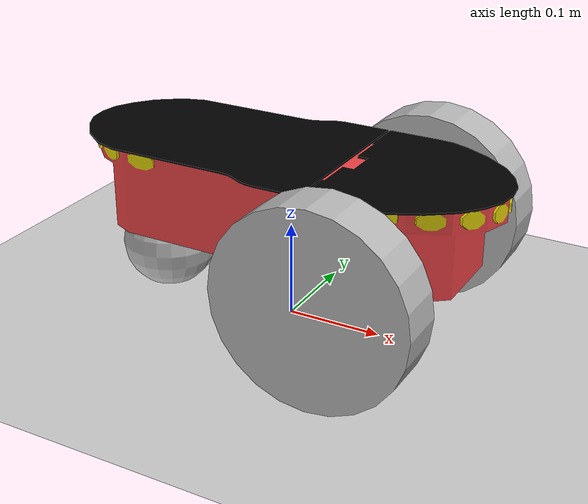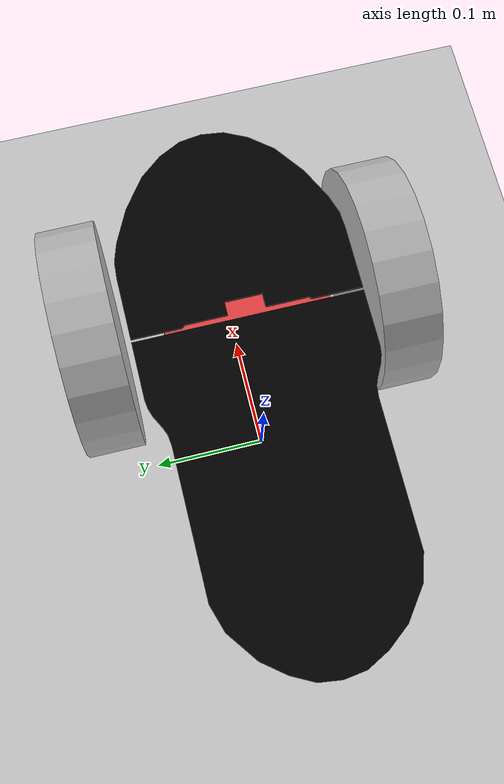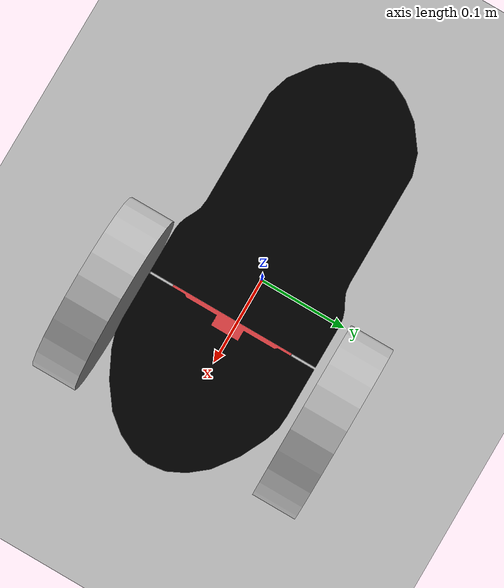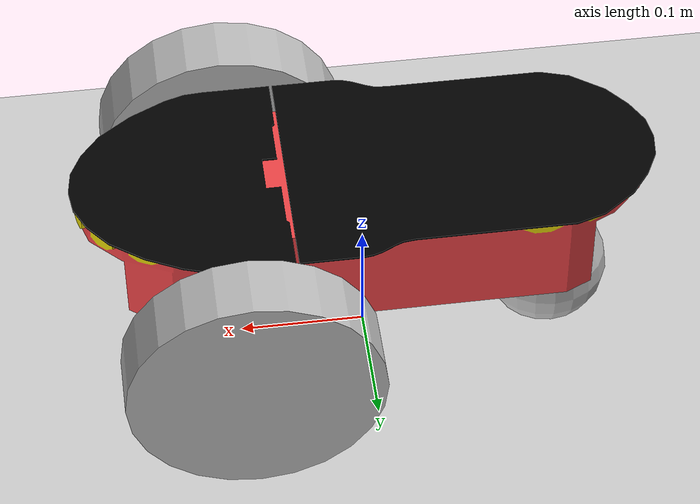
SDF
<?xml version="1.0" ?>
<sdf version="1.4">
  <world name="default">
    <include>
	<uri>model://ground_plane</uri>
    </include>

    <include>
      <uri>model://sun</uri>
    </include>

   <model name="my_robot">
		<static>false</static>
		<link name='chassis'>
			<pose>0 0 .1 0 0 0</pose>
			<sensor name='my_camera' type='camera'>
				<camera>
					<save enabled="true">
						<path>/home/mekedem/Desktop/camera_save_tutorial</path>
					</save>
					<horizontal_fov>1.047</horizontal_fov>
					<image>
						<width>1920</width>
						<height>1080</height>
					</image>
					<clip>
						<near>0.1</near>
						<far>100</far>
					</clip>
				</camera>
				<always_on>1</always_on>
				<update_rate>30</update_rate>
			</sensor>

			<collision name='collision'>
				<geometry>
					<box>
						<size>.4 .2 .1</size>
					</box>
				</geometry>
			</collision>

			<visual name='visual'>
				<pose>0 0 0.05 0 0 0</pose>
				<geometry>
					<mesh>
						<uri>model://pioneer2dx/meshes/chassis.dae</uri>
						<scale>0.9 0.5 0.5</scale>
					</mesh>
				</geometry>
			</visual>
			<collision name='caster_collision'>
				<pose>-0.15 0 -0.05 0 0 0</pose>
				<geometry>
					<sphere>
						<radius>.05</radius>
					</sphere>
				</geometry>

				<surface>
					<friction>
						<ode>
							<mu>0</mu>
							<mu2>0</mu2>
							<slip1>1.0</slip1>
							<slip2>1.0</slip2>
						</ode>
					</friction>
				</surface>
			</collision>

			<visual name='caster_visual'>
				<pose>-0.15 0 -0.05 0 0 0</pose>
				<geometry>
					<sphere>
						<radius>.05</radius>
					</sphere>
				</geometry>
			</visual>
			<sensor name="laser" type="ray">
				<pose>0 0 .1 0 0 0</pose>
				<ray>
					<scan>
						<horizontal>
							<samples>640</samples>
							<resolution>1</resolution>
							<min_angle>-2.26889</min_angle>
							<max_angle>2.268899</max_angle>
						</horizontal>
					</scan>
					<range>
						<min>0.08</min>
						<max>10</max>
						<resolution>0.01</resolution>
					</range>
					<noise>
						<type>gaussian</type>
						<mean>0.0</mean>
						<stddev>0.01</stddev>
					</noise>
				</ray>
				<plugin name="laser" filename="libRayPlugin.so" />
				<always_on>1</always_on>
				<update_rate>30</update_rate>
				<visualize>true</visualize>
			</sensor>
		</link>
		<link name="left_wheel">
			<pose>0.1 0.13 0.1 0 1.5707 1.5707</pose>
			<collision name="collision">
				<geometry>
					<cylinder>
						<radius>.1</radius>
						<length>.05</length>
					</cylinder>
				</geometry>
			</collision>
			<visual name="visual">
				<joint type="revolute" name="left_wheel_hinge">
					<pose>0 0 -0.03 0 0 0</pose>
					<child>left_wheel</child>
					<parent>chassis</parent>
					<axis>
						<xyz>0 1 0</xyz>
					</axis>
				</joint>

				<joint type="revolute" name="right_wheel_hinge">
					<pose>0 0 0.03 0 0 0</pose>
					<child>right_wheel</child>
					<parent>chassis</parent>
					<axis>
						<xyz>0 1 0</xyz>
					</axis>
				</joint>
				<geometry>
					<cylinder>
						<radius>.1</radius>
						<length>.05</length>
					</cylinder>
				</geometry>
			</visual>
		</link>
		<link name="right_wheel">
			<pose>0.1 -0.13 0.1 0 1.5707 1.5707</pose>
			<collision name="collision">
				<geometry>
					<cylinder>
						<radius>.1</radius>
						<length>.05</length>
					</cylinder>
				</geometry>
			</collision>
			<visual name="visual">
				<geometry>
					<cylinder>
						<radius>.1</radius>
						<length>.05</length>
					</cylinder>
				</geometry>
			</visual>
		</link>
		<joint type="revolute" name="left_wheel_hinge">
			<pose>0 0 -0.03 0 0 0</pose>
			<child>left_wheel</child>
			<parent>chassis</parent>
			<axis>
				<xyz>0 1 0</xyz>
			</axis>
		</joint>

		<joint type="revolute" name="right_wheel_hinge">
			<pose>0 0 0.03 0 0 0</pose>
			<child>right_wheel</child>
			<parent>chassis</parent>
			<axis>
				<xyz>0 1 0</xyz>
			</axis>
		</joint>
    <!-- reference to your plugin -->
    <plugin name="gazebo_robot" filename="libgazebo_robot.so"/>

	</model>

  </world>
</sdf>
